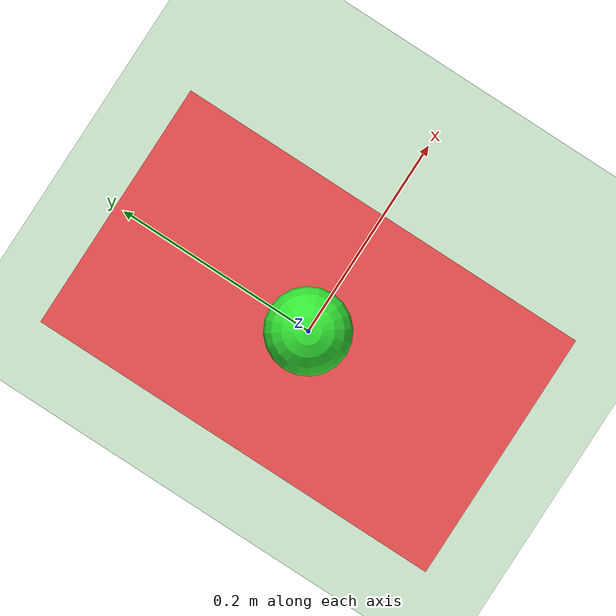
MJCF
<mujoco model="cartpole">
  <compiler angle="radian" coordinate="local" inertiafromgeom="true"/>
  <option timestep="0.01" gravity="0 0 -9.81"/>

  <default>
    <geom type="box" rgba="0.8 0.3 0.3 1" density="500" friction="1 0.1 0.1"/>
    <joint damping="1" armature="0"/>
  </default>

  <asset>
    <texture name="skybox" type="skybox" builtin="gradient" rgb1="0.6 0.7 0.8" rgb2="0 0 0" width="256" height="256"/>
    <texture name="ground" builtin="checker" rgb1="0.2 0.3 0.4" rgb2="0.1 0.15 0.2" width="512" height="512"/>
    <material name="ground" texture="ground" texrepeat="60 60" reflectance="0.2"/>
  </asset>

  <worldbody>
    <geom name="floor" type="plane" material="ground" size="5 5 0.1" rgba="0.8 0.9 0.8 1"/>

    <body name="cart" pos="0 0 0.055">
      <joint name="slider" type="slide" axis="1 0 0" limited="true" range="-2 2"/>
      <geom name="cart" type="box" size="0.12 0.2 0.05" rgba="0.9 0.3 0.3 1"/>

      <body name="pole" pos="0 0 0.045">
        <joint name="hinge" type="hinge" axis="0 1 0" damping="0.1"/>
        <geom name="pole" type="capsule" fromto="0 0 0 0 0 0.6" size="0.025" density="300" rgba="0.2 0.6 0.9 1"/>
        <site name="tip" pos="0 0 0.6" size="0.03" rgba="0.2 0.9 0.2 1"/>
      </body>
    </body>
  </worldbody>

  <actuator>
    <motor name="cart_force" joint="slider" gear="50" ctrllimited="true" ctrlrange="-200 200"/>
  </actuator>
</mujoco>
